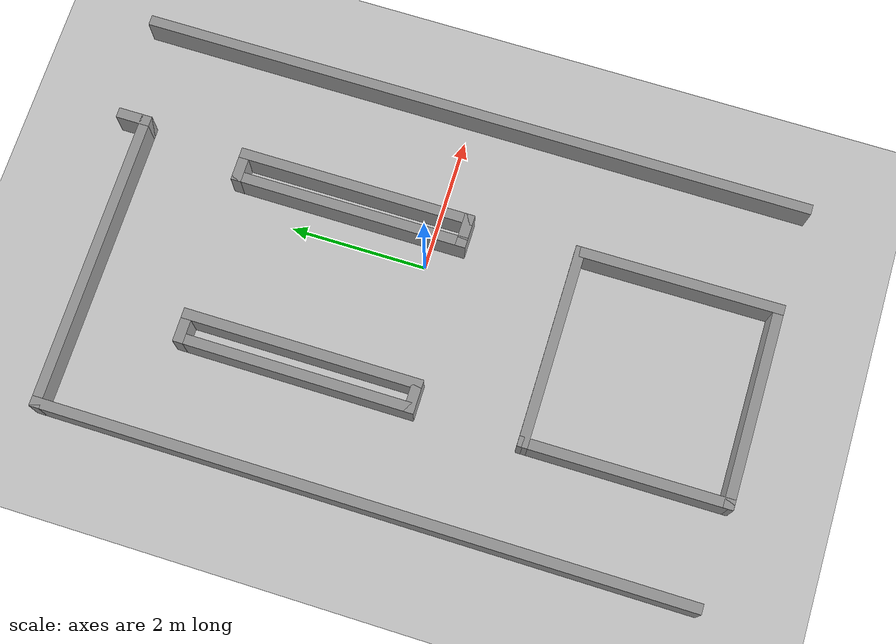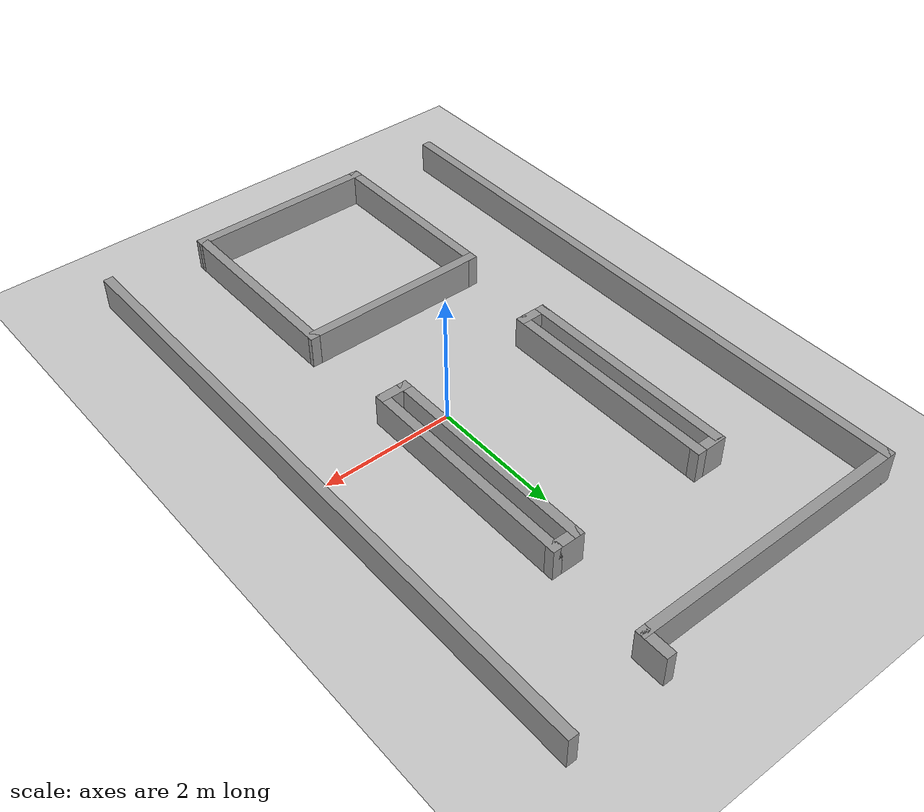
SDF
<sdf version="1.7">
 <world name="default">
  <light name="sun" type="directional">
   <pose>0 0 10 0 -0 0</pose>
   <diffuse>0.8 0.8 0.8 1</diffuse>
   <specular>0.2 0.2 0.2 1</specular>
   <attenuation>
    <range>1000</range>
    <constant>0.9</constant>
    <linear>0.01</linear>
    <quadratic>0.001</quadratic>
   </attenuation>
   <direction>-0.5 0.1 -0.9</direction>
   <spot><inner_angle>0</inner_angle><outer_angle>0</outer_angle><falloff>0</falloff></spot>
  </light>
  <model name="ground_plane">
   <static>1</static>
   <link name="link">
    <collision name="collision">
     <geometry><plane><normal>0 0 1</normal><size>100 100</size></plane></geometry>
     <surface>
      <contact><collide_bitmask>65535</collide_bitmask></contact>
      <friction><ode><mu>100</mu><mu2>50</mu2></ode></friction>
     </surface>
    </collision>
    <visual name="visual">
     <cast_shadows>0</cast_shadows>
     <geometry><plane><normal>0 0 1</normal><size>100 100</size></plane></geometry>
     <material>
      <script><uri>file://media/materials/scripts/gazebo.material</uri><name>Gazebo/Grey</name></script>
     </material>
    </visual>
   </link>
  </model>
  <gravity>0 0 -9.8</gravity>
  <magnetic_field>6e-06 2.3e-05 -4.2e-05</magnetic_field>
  <atmosphere type="adiabatic"/>
  <physics type="ode">
   <max_step_size>0.001</max_step_size>
   <real_time_factor>1</real_time_factor>
   <real_time_update_rate>1000</real_time_update_rate>
  </physics>
  <scene><ambient>0.4 0.4 0.4 1</ambient><background>0.7 0.7 0.7 1</background><shadows>1</shadows></scene>
  <spherical_coordinates>
   <surface_model>EARTH_WGS84</surface_model>
   <latitude_deg>0</latitude_deg>
   <longitude_deg>0</longitude_deg>
   <elevation>0</elevation>
   <heading_deg>0</heading_deg>
  </spherical_coordinates>
  <model name="circuit_MAPF">
   <pose>-0.619749 -0.045759 0 0 -0 0</pose>
   <link name="Wall_10">
    <collision name="Wall_10_Collision">
     <geometry><box><size>3.5 0.15 0.5</size></box></geometry>
     <pose>0 0 0.25 0 -0 0</pose>
    </collision>
    <visual name="Wall_10_Visual">
     <pose>0 0 0.25 0 -0 0</pose>
     <geometry><box><size>3.5 0.15 0.5</size></box></geometry>
     <material>
      <script><uri>file://media/materials/scripts/gazebo.material</uri><name>Gazebo/Grey</name></script>
      <ambient>1 1 1 1</ambient>
     </material>
     <meta><layer>0</layer></meta>
    </visual>
    <pose>-1.49025 1.27776 0 0 -0 -1.5708</pose>
   </link>
   <link name="Wall_11">
    <collision name="Wall_11_Collision">
     <geometry><box><size>0.5 0.15 0.5</size></box></geometry>
     <pose>0 0 0.25 0 -0 0</pose>
    </collision>
    <visual name="Wall_11_Visual">
     <pose>0 0 0.25 0 -0 0</pose>
     <geometry><box><size>0.5 0.15 0.5</size></box></geometry>
     <material>
      <script><uri>file://media/materials/scripts/gazebo.material</uri><name>Gazebo/Grey</name></script>
      <ambient>1 1 1 1</ambient>
     </material>
     <meta><layer>0</layer></meta>
    </visual>
    <pose>-1.31525 -0.397241 0 0 -0 0</pose>
   </link>
   <link name="Wall_12">
    <collision name="Wall_12_Collision">
     <geometry><box><size>3.5 0.15 0.5</size></box></geometry>
     <pose>0 0 0.25 0 -0 0</pose>
    </collision>
    <visual name="Wall_12_Visual">
     <pose>0 0 0.25 0 -0 0</pose>
     <geometry><box><size>3.5 0.15 0.5</size></box></geometry>
     <material>
      <script><uri>file://media/materials/scripts/gazebo.material</uri><name>Gazebo/Grey</name></script>
      <ambient>1 1 1 1</ambient>
     </material>
     <meta><layer>0</layer></meta>
    </visual>
    <pose>-1.14025 1.27776 0 0 -0 1.5708</pose>
   </link>
   <link name="Wall_13">
    <collision name="Wall_13_Collision">
     <geometry><box><size>0.5 0.15 0.5</size></box></geometry>
     <pose>0 0 0.25 0 -0 0</pose>
    </collision>
    <visual name="Wall_13_Visual">
     <pose>0 0 0.25 0 -0 0</pose>
     <geometry><box><size>0.5 0.15 0.5</size></box></geometry>
     <material>
      <script><uri>file://media/materials/scripts/gazebo.material</uri><name>Gazebo/Grey</name></script>
      <ambient>1 1 1 1</ambient>
     </material>
     <meta><layer>0</layer></meta>
    </visual>
    <pose>-1.31525 2.95276 0 0 -0 3.14159</pose>
   </link>
   <link name="Wall_15">
    <collision name="Wall_15_Collision">
     <geometry><box><size>3.5 0.15 0.5</size></box></geometry>
     <pose>0 0 0.25 0 -0 0</pose>
    </collision>
    <visual name="Wall_15_Visual">
     <pose>0 0 0.25 0 -0 0</pose>
     <geometry><box><size>3.5 0.15 0.5</size></box></geometry>
     <material>
      <script><uri>file://media/materials/scripts/gazebo.material</uri><name>Gazebo/Grey</name></script>
      <ambient>1 1 1 1</ambient>
     </material>
     <meta><layer>0</layer></meta>
    </visual>
    <pose>1.00375 1.29376 0 0 -0 -1.5708</pose>
   </link>
   <link name="Wall_16">
    <collision name="Wall_16_Collision">
     <geometry><box><size>0.5 0.15 0.5</size></box></geometry>
     <pose>0 0 0.25 0 -0 0</pose>
    </collision>
    <visual name="Wall_16_Visual">
     <pose>0 0 0.25 0 -0 0</pose>
     <geometry><box><size>0.5 0.15 0.5</size></box></geometry>
     <material>
      <script><uri>file://media/materials/scripts/gazebo.material</uri><name>Gazebo/Grey</name></script>
      <ambient>1 1 1 1</ambient>
     </material>
     <meta><layer>0</layer></meta>
    </visual>
    <pose>1.17875 -0.381241 0 0 -0 0</pose>
   </link>
   <link name="Wall_17">
    <collision name="Wall_17_Collision">
     <geometry><box><size>3.5 0.15 0.5</size></box></geometry>
     <pose>0 0 0.25 0 -0 0</pose>
    </collision>
    <visual name="Wall_17_Visual">
     <pose>0 0 0.25 0 -0 0</pose>
     <geometry><box><size>3.5 0.15 0.5</size></box></geometry>
     <material>
      <script><uri>file://media/materials/scripts/gazebo.material</uri><name>Gazebo/Grey</name></script>
      <ambient>1 1 1 1</ambient>
     </material>
     <meta><layer>0</layer></meta>
    </visual>
    <pose>1.35375 1.29376 0 0 -0 1.5708</pose>
   </link>
   <link name="Wall_18">
    <collision name="Wall_18_Collision">
     <geometry><box><size>0.5 0.15 0.5</size></box></geometry>
     <pose>0 0 0.25 0 -0 0</pose>
    </collision>
    <visual name="Wall_18_Visual">
     <pose>0 0 0.25 0 -0 0</pose>
     <geometry><box><size>0.5 0.15 0.5</size></box></geometry>
     <material>
      <script><uri>file://media/materials/scripts/gazebo.material</uri><name>Gazebo/Grey</name></script>
      <ambient>1 1 1 1</ambient>
     </material>
     <meta><layer>0</layer></meta>
    </visual>
    <pose>1.17875 2.96876 0 0 -0 3.14159</pose>
   </link>
   <link name="Wall_20">
    <collision name="Wall_20_Collision">
     <geometry><box><size>3.03078 0.15 0.5</size></box></geometry>
     <pose>0 0 0.25 0 -0 0</pose>
    </collision>
    <visual name="Wall_20_Visual">
     <pose>0 0 0.25 0 -0 0</pose>
     <geometry><box><size>3.03078 0.15 0.5</size></box></geometry>
     <material>
      <script><uri>file://media/materials/scripts/gazebo.material</uri><name>Gazebo/Grey</name></script>
      <ambient>1 1 1 1</ambient>
     </material>
     <meta><layer>0</layer></meta>
    </visual>
    <pose>-1.48275 -3.46024 0 0 -0 -1.56559</pose>
   </link>
   <link name="Wall_21">
    <collision name="Wall_21_Collision">
     <geometry><box><size>3 0.15 0.5</size></box></geometry>
     <pose>0 0 0.25 0 -0 0</pose>
    </collision>
    <visual name="Wall_21_Visual">
     <pose>0 0 0.25 0 -0 0</pose>
     <geometry><box><size>3 0.15 0.5</size></box></geometry>
     <material>
      <script><uri>file://media/materials/scripts/gazebo.material</uri><name>Gazebo/Grey</name></script>
      <ambient>1 1 1 1</ambient>
     </material>
     <meta><layer>0</layer></meta>
    </visual>
    <pose>-0.050251 -4.90024 0 0 -0 0</pose>
   </link>
   <link name="Wall_22">
    <collision name="Wall_22_Collision">
     <geometry><box><size>3.03078 0.15 0.5</size></box></geometry>
     <pose>0 0 0.25 0 -0 0</pose>
    </collision>
    <visual name="Wall_22_Visual">
     <pose>0 0 0.25 0 -0 0</pose>
     <geometry><box><size>3.03078 0.15 0.5</size></box></geometry>
     <material>
      <script><uri>file://media/materials/scripts/gazebo.material</uri><name>Gazebo/Grey</name></script>
      <ambient>1 1 1 1</ambient>
     </material>
     <meta><layer>0</layer></meta>
    </visual>
    <pose>1.36725 -3.46024 0 0 -0 1.57601</pose>
   </link>
   <link name="Wall_23">
    <collision name="Wall_23_Collision">
     <geometry><box><size>3 0.15 0.5</size></box></geometry>
     <pose>0 0 0.25 0 -0 0</pose>
    </collision>
    <visual name="Wall_23_Visual">
     <pose>0 0 0.25 0 -0 0</pose>
     <geometry><box><size>3 0.15 0.5</size></box></geometry>
     <material>
      <script><uri>file://media/materials/scripts/gazebo.material</uri><name>Gazebo/Grey</name></script>
      <ambient>1 1 1 1</ambient>
     </material>
     <meta><layer>0</layer></meta>
    </visual>
    <pose>-0.065251 -2.02024 0 0 -0 3.14159</pose>
   </link>
   <link name="Wall_25">
    <collision name="Wall_25_Collision">
     <geometry><box><size>10 0.15 0.5</size></box></geometry>
     <pose>0 0 0.25 0 -0 0</pose>
    </collision>
    <visual name="Wall_25_Visual">
     <pose>0 0 0.25 0 -0 0</pose>
     <geometry><box><size>10 0.15 0.5</size></box></geometry>
     <material>
      <script><uri>file://media/materials/scripts/gazebo.material</uri><name>Gazebo/Grey</name></script>
      <ambient>1 1 1 1</ambient>
     </material>
     <meta><layer>0</layer></meta>
    </visual>
    <pose>2.93525 0 0 0 -0 1.5708</pose>
   </link>
   <link name="Wall_5">
    <collision name="Wall_5_Collision">
     <geometry><box><size>4.5 0.15 0.5</size></box></geometry>
     <pose>0 0 0.25 0 -0 0</pose>
    </collision>
    <visual name="Wall_5_Visual">
     <pose>0 0 0.25 0 -0 0</pose>
     <geometry><box><size>4.5 0.15 0.5</size></box></geometry>
     <material>
      <script><uri>file://media/materials/scripts/gazebo.material</uri><name>Gazebo/Grey</name></script>
      <ambient>1 1 1 1</ambient>
     </material>
     <meta><layer>0</layer></meta>
    </visual>
    <pose>-0.760251 4.51976 0 0 -0 0</pose>
   </link>
   <link name="Wall_6">
    <collision name="Wall_6_Collision">
     <geometry><box><size>0.5 0.15 0.5</size></box></geometry>
     <pose>0 0 0.25 0 -0 0</pose>
    </collision>
    <visual name="Wall_6_Visual">
     <pose>0 0 0.25 0 -0 0</pose>
     <geometry><box><size>0.5 0.15 0.5</size></box></geometry>
     <material>
      <script><uri>file://media/materials/scripts/gazebo.material</uri><name>Gazebo/Grey</name></script>
      <ambient>1 1 1 1</ambient>
     </material>
     <meta><layer>0</layer></meta>
    </visual>
    <pose>1.41475 4.69476 0 0 -0 1.5708</pose>
   </link>
   <link name="Wall_8">
    <collision name="Wall_8_Collision">
     <geometry><box><size>9.5 0.15 0.5</size></box></geometry>
     <pose>0 0 0.25 0 -0 0</pose>
    </collision>
    <visual name="Wall_8_Visual">
     <pose>0 0 0.25 0 -0 0</pose>
     <geometry><box><size>9.5 0.15 0.5</size></box></geometry>
     <material>
      <script><uri>file://media/materials/scripts/gazebo.material</uri><name>Gazebo/Grey</name></script>
      <ambient>1 1 1 1</ambient>
     </material>
     <meta><layer>0</layer></meta>
    </visual>
    <pose>-2.93525 -0.155241 0 0 -0 -1.5708</pose>
   </link>
   <static>1</static>
  </model>
 </world>
</sdf>
